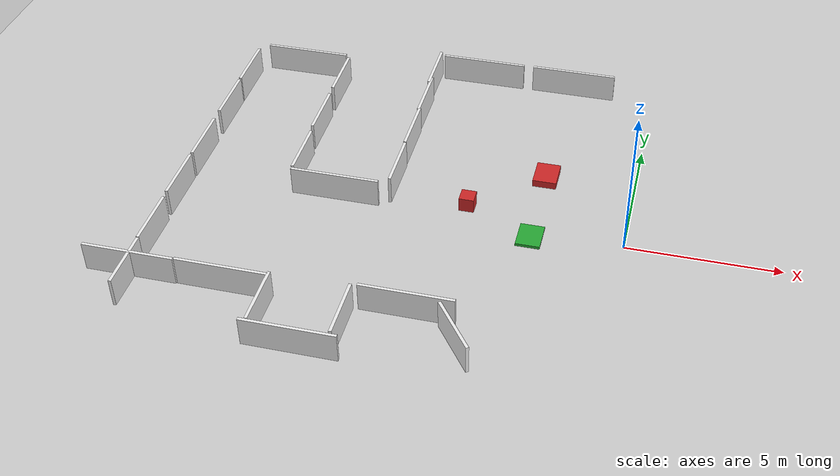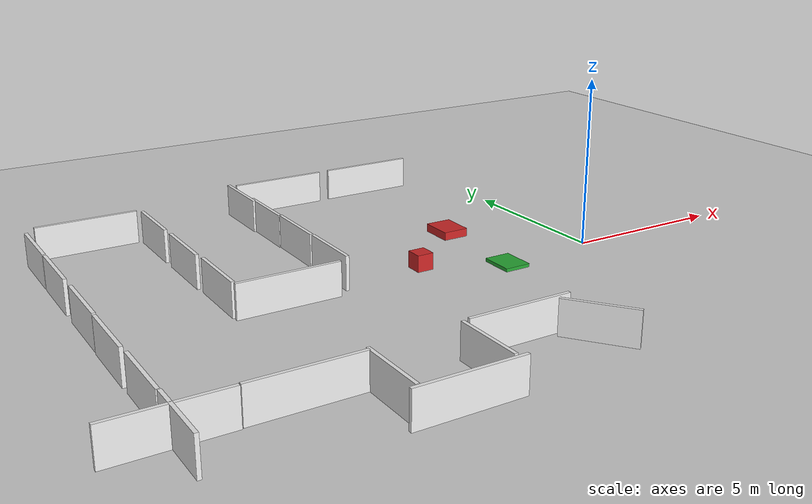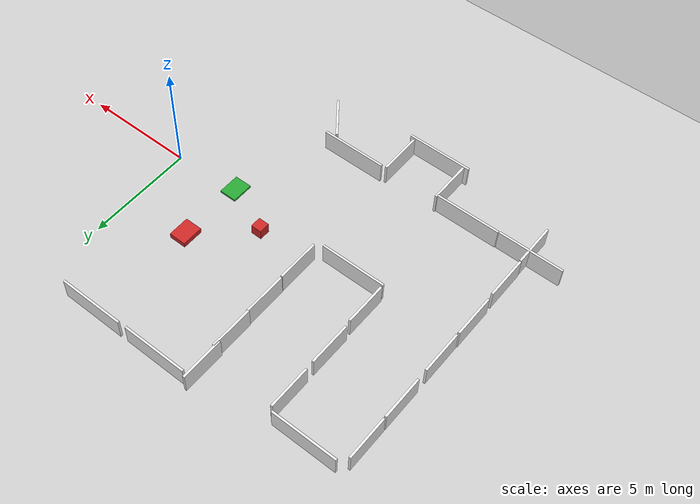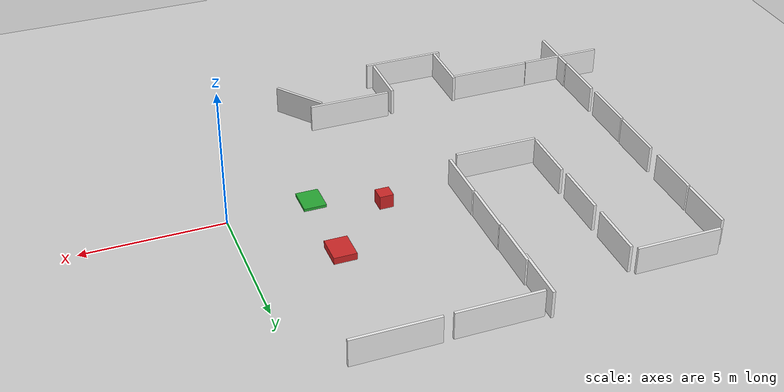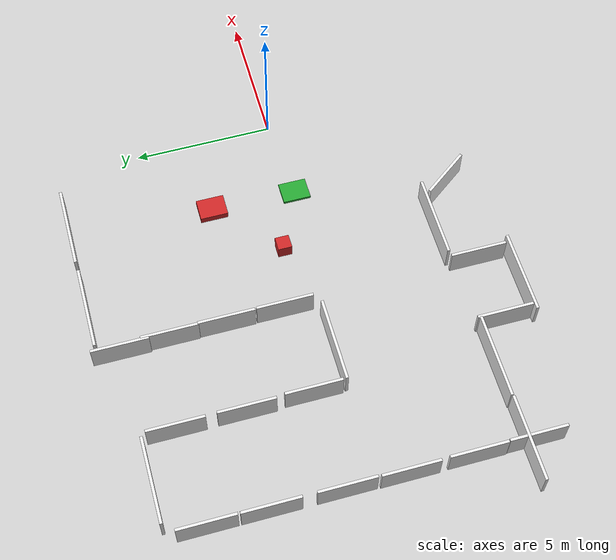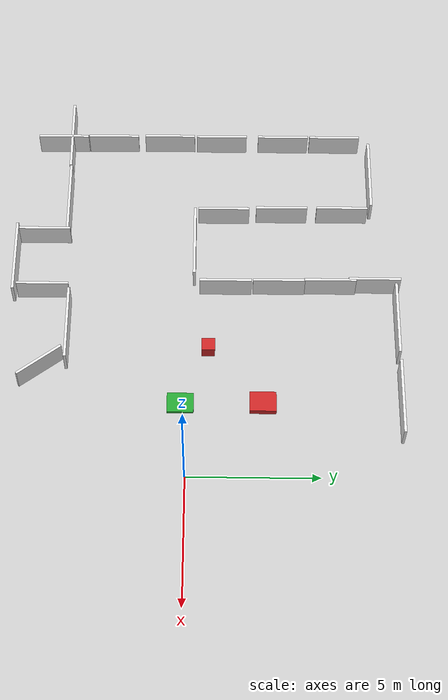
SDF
<sdf version="1.7">
 <world name="two_floor_test">
  <model name="ground_plane">
   <static>1</static>
   <link name="link">
    <collision name="collision">
     <geometry><plane><normal>0 0 1</normal><size>20 20</size></plane></geometry>
     <surface><friction><ode><mu>100</mu><mu2>50</mu2></ode></friction></surface>
    </collision>
    <visual name="visual">
     <cast_shadows>0</cast_shadows>
     <geometry><plane><normal>0 0 1</normal><size>20 20</size></plane></geometry>
     <material>
      <script><uri>file://media/materials/scripts/gazebo.material</uri><name>Gazebo/Grey</name></script>
     </material>
    </visual>
   </link>
  </model>
  <model name="obstacle_box_1">
   <static>1</static>
   <pose>-5.28721 0.823021 0.25 0 -0 0</pose>
   <link name="link">
    <collision name="collision"><geometry><box><size>0.5 0.5 0.5</size></box></geometry></collision>
    <visual name="visual">
     <geometry><box><size>0.5 0.5 0.5</size></box></geometry>
     <material>
      <script><uri>file://media/materials/scripts/gazebo.material</uri><name>Gazebo/Red</name></script>
     </material>
    </visual>
   </link>
  </model>
  <model name="obstacle_small_step">
   <static>1</static>
   <pose>-3.00223 -0.205601 0.05 0 -0 0</pose>
   <link name="link">
    <collision name="collision">
     <geometry><box><size>0.8 1 0.1</size></box></geometry>
     <surface><friction><ode><mu>100</mu><mu2>50</mu2></ode></friction></surface>
    </collision>
    <visual name="visual">
     <geometry><box><size>0.8 1 0.1</size></box></geometry>
     <material>
      <script><uri>file://media/materials/scripts/gazebo.material</uri><name>Gazebo/Green</name></script>
     </material>
    </visual>
   </link>
  </model>
  <model name="obstacle_large_step">
   <static>1</static>
   <pose>-3.00224 2.88248 0.125 0 -0 0</pose>
   <link name="link">
    <collision name="collision">
     <geometry><box><size>0.8 1 0.25</size></box></geometry>
     <surface><friction><ode><mu>100</mu><mu2>50</mu2></ode></friction></surface>
    </collision>
    <visual name="visual">
     <geometry><box><size>0.8 1 0.25</size></box></geometry>
     <material>
      <script><uri>file://media/materials/scripts/gazebo.material</uri><name>Gazebo/Red</name></script>
     </material>
    </visual>
   </link>
  </model>
  <model name="wall_ramp_clone_2">
   <static>1</static>
   <pose>-7.85003 1.46144 0.5 0 -0 0</pose>
   <link name="link">
    <collision name="collision"><geometry><box><size>0.1 2 1</size></box></geometry></collision>
    <visual name="visual">
     <geometry><box><size>0.1 2 1</size></box></geometry>
     <material>
      <script><uri>file://media/materials/scripts/gazebo.material</uri><name>Gazebo/White</name></script>
     </material>
    </visual>
   </link>
  </model>
  <model name="wall_stairs_clone_0">
   <static>1</static>
   <pose>-5.94725 -4.54683 0.5 0 -0 0</pose>
   <link name="link">
    <collision name="collision"><geometry><box><size>3 0.1 1</size></box></geometry></collision>
    <visual name="visual">
     <geometry><box><size>3 0.1 1</size></box></geometry>
     <material>
      <script><uri>file://media/materials/scripts/gazebo.material</uri><name>Gazebo/White</name></script>
     </material>
    </visual>
   </link>
  </model>
  <model name="wall_stairs_clone_2">
   <static>1</static>
   <pose>-2.93126 8.02543 0.5 0 -0 0</pose>
   <link name="link">
    <collision name="collision"><geometry><box><size>3 0.1 1</size></box></geometry></collision>
    <visual name="visual">
     <geometry><box><size>3 0.1 1</size></box></geometry>
     <material>
      <script><uri>file://media/materials/scripts/gazebo.material</uri><name>Gazebo/White</name></script>
     </material>
    </visual>
   </link>
  </model>
  <model name="wall_stairs_clone_3">
   <static>1</static>
   <pose>-6.2784 8.00242 0.5 0 -0 0</pose>
   <link name="link">
    <collision name="collision"><geometry><box><size>3 0.1 1</size></box></geometry></collision>
    <visual name="visual">
     <geometry><box><size>3 0.1 1</size></box></geometry>
     <material>
      <script><uri>file://media/materials/scripts/gazebo.material</uri><name>Gazebo/White</name></script>
     </material>
    </visual>
   </link>
  </model>
  <model name="wall_ramp_clone_2_clone">
   <static>1</static>
   <pose>-4.29434 -5.50248 0.5 0 -0 0.645112</pose>
   <link name="link">
    <collision name="collision"><geometry><box><size>0.1 2 1</size></box></geometry></collision>
    <visual name="visual">
     <geometry><box><size>0.1 2 1</size></box></geometry>
     <material>
      <script><uri>file://media/materials/scripts/gazebo.material</uri><name>Gazebo/White</name></script>
     </material>
    </visual>
   </link>
  </model>
  <model name="wall_ramp_clone_2_clone_1">
   <static>1</static>
   <pose>-7.64634 -5.58073 0.5 0 -0 0</pose>
   <link name="link">
    <collision name="collision"><geometry><box><size>0.1 2 1</size></box></geometry></collision>
    <visual name="visual">
     <geometry><box><size>0.1 2 1</size></box></geometry>
     <material>
      <script><uri>file://media/materials/scripts/gazebo.material</uri><name>Gazebo/White</name></script>
     </material>
    </visual>
   </link>
  </model>
  <model name="wall_ramp_clone_2_clone_2">
   <static>1</static>
   <pose>-10.1757 -5.63925 0.5 0 -0 0</pose>
   <link name="link">
    <collision name="collision"><geometry><box><size>0.1 2 1</size></box></geometry></collision>
    <visual name="visual">
     <geometry><box><size>0.1 2 1</size></box></geometry>
     <material>
      <script><uri>file://media/materials/scripts/gazebo.material</uri><name>Gazebo/White</name></script>
     </material>
    </visual>
   </link>
  </model>
  <model name="wall_ramp_clone_2_clone_3">
   <static>1</static>
   <pose>-7.86965 3.51111 0.5 0 -0 0</pose>
   <link name="link">
    <collision name="collision"><geometry><box><size>0.1 2 1</size></box></geometry></collision>
    <visual name="visual">
     <geometry><box><size>0.1 2 1</size></box></geometry>
     <material>
      <script><uri>file://media/materials/scripts/gazebo.material</uri><name>Gazebo/White</name></script>
     </material>
    </visual>
   </link>
  </model>
  <model name="wall_ramp_clone_2_clone_4">
   <static>1</static>
   <pose>-7.89941 5.47788 0.5 0 -0 0</pose>
   <link name="link">
    <collision name="collision"><geometry><box><size>0.1 2 1</size></box></geometry></collision>
    <visual name="visual">
     <geometry><box><size>0.1 2 1</size></box></geometry>
     <material>
      <script><uri>file://media/materials/scripts/gazebo.material</uri><name>Gazebo/White</name></script>
     </material>
    </visual>
   </link>
  </model>
  <model name="wall_stairs_clone_clone">
   <static>1</static>
   <pose>-8.89798 -6.70854 0.5 0 -0 0</pose>
   <link name="link">
    <collision name="collision"><geometry><box><size>3 0.1 1</size></box></geometry></collision>
    <visual name="visual">
     <geometry><box><size>3 0.1 1</size></box></geometry>
     <material>
      <script><uri>file://media/materials/scripts/gazebo.material</uri><name>Gazebo/White</name></script>
     </material>
    </visual>
   </link>
  </model>
  <model name="wall_stairs_clone_clone_0">
   <static>1</static>
   <pose>-11.6931 -4.75098 0.5 0 -0 0</pose>
   <link name="link">
    <collision name="collision"><geometry><box><size>3 0.1 1</size></box></geometry></collision>
    <visual name="visual">
     <geometry><box><size>3 0.1 1</size></box></geometry>
     <material>
      <script><uri>file://media/materials/scripts/gazebo.material</uri><name>Gazebo/White</name></script>
     </material>
    </visual>
   </link>
  </model>
  <model name="wall_stairs_clone_clone_1">
   <static>1</static>
   <pose>-14.7245 -4.77766 0.5 0 -0 0</pose>
   <link name="link">
    <collision name="collision"><geometry><box><size>3 0.1 1</size></box></geometry></collision>
    <visual name="visual">
     <geometry><box><size>3 0.1 1</size></box></geometry>
     <material>
      <script><uri>file://media/materials/scripts/gazebo.material</uri><name>Gazebo/White</name></script>
     </material>
    </visual>
   </link>
  </model>
  <model name="wall_stairs_clone_clone_2">
   <static>1</static>
   <pose>-9.67691 0.245594 0.5 0 -0 0</pose>
   <link name="link">
    <collision name="collision"><geometry><box><size>3 0.1 1</size></box></geometry></collision>
    <visual name="visual">
     <geometry><box><size>3 0.1 1</size></box></geometry>
     <material>
      <script><uri>file://media/materials/scripts/gazebo.material</uri><name>Gazebo/White</name></script>
     </material>
    </visual>
   </link>
  </model>
  <model name="wall_stairs_clone_clone_3">
   <static>1</static>
   <pose>-12.8865 7.17845 0.5 0 -0 0</pose>
   <link name="link">
    <collision name="collision"><geometry><box><size>3 0.1 1</size></box></geometry></collision>
    <visual name="visual">
     <geometry><box><size>3 0.1 1</size></box></geometry>
     <material>
      <script><uri>file://media/materials/scripts/gazebo.material</uri><name>Gazebo/White</name></script>
     </material>
    </visual>
   </link>
  </model>
  <model name="wall_ramp_clone_2_clone_4_clone">
   <static>1</static>
   <pose>-11.1694 1.37105 0.5 0 -0 0</pose>
   <link name="link">
    <collision name="collision"><geometry><box><size>0.1 2 1</size></box></geometry></collision>
    <visual name="visual">
     <geometry><box><size>0.1 2 1</size></box></geometry>
     <material>
      <script><uri>file://media/materials/scripts/gazebo.material</uri><name>Gazebo/White</name></script>
     </material>
    </visual>
   </link>
  </model>
  <model name="wall_ramp_clone_2_clone_4_clone_0">
   <static>1</static>
   <pose>-11.2244 3.65144 0.5 0 -0 0</pose>
   <link name="link">
    <collision name="collision"><geometry><box><size>0.1 2 1</size></box></geometry></collision>
    <visual name="visual">
     <geometry><box><size>0.1 2 1</size></box></geometry>
     <material>
      <script><uri>file://media/materials/scripts/gazebo.material</uri><name>Gazebo/White</name></script>
     </material>
    </visual>
   </link>
  </model>
  <model name="wall_ramp_clone_2_clone_4_clone_1">
   <static>1</static>
   <pose>-11.2395 6.03016 0.5 0 -0 0</pose>
   <link name="link">
    <collision name="collision"><geometry><box><size>0.1 2 1</size></box></geometry></collision>
    <visual name="visual">
     <geometry><box><size>0.1 2 1</size></box></geometry>
     <material>
      <script><uri>file://media/materials/scripts/gazebo.material</uri><name>Gazebo/White</name></script>
     </material>
    </visual>
   </link>
  </model>
  <model name="wall_ramp_clone_2_clone_4_clone_2">
   <static>1</static>
   <pose>-14.6906 5.82366 0.5 0 -0 0</pose>
   <link name="link">
    <collision name="collision"><geometry><box><size>0.1 2 1</size></box></geometry></collision>
    <visual name="visual">
     <geometry><box><size>0.1 2 1</size></box></geometry>
     <material>
      <script><uri>file://media/materials/scripts/gazebo.material</uri><name>Gazebo/White</name></script>
     </material>
    </visual>
   </link>
  </model>
  <model name="wall_ramp_clone_2_clone_4_clone_3">
   <static>1</static>
   <pose>-14.6916 3.74644 0.5 0 -0 0</pose>
   <link name="link">
    <collision name="collision"><geometry><box><size>0.1 2 1</size></box></geometry></collision>
    <visual name="visual">
     <geometry><box><size>0.1 2 1</size></box></geometry>
     <material>
      <script><uri>file://media/materials/scripts/gazebo.material</uri><name>Gazebo/White</name></script>
     </material>
    </visual>
   </link>
  </model>
  <model name="wall_ramp_clone_2_clone_4_clone_4">
   <static>1</static>
   <pose>-14.687 1.26724 0.5 0 -0 0</pose>
   <link name="link">
    <collision name="collision"><geometry><box><size>0.1 2 1</size></box></geometry></collision>
    <visual name="visual">
     <geometry><box><size>0.1 2 1</size></box></geometry>
     <material>
      <script><uri>file://media/materials/scripts/gazebo.material</uri><name>Gazebo/White</name></script>
     </material>
    </visual>
   </link>
  </model>
  <model name="wall_ramp_clone_2_clone_4_clone_4_clone">
   <static>1</static>
   <pose>-14.7047 -0.825585 0.5 0 -0 0</pose>
   <link name="link">
    <collision name="collision"><geometry><box><size>0.1 2 1</size></box></geometry></collision>
    <visual name="visual">
     <geometry><box><size>0.1 2 1</size></box></geometry>
     <material>
      <script><uri>file://media/materials/scripts/gazebo.material</uri><name>Gazebo/White</name></script>
     </material>
    </visual>
   </link>
  </model>
  <model name="wall_ramp_clone_2_clone_4_clone_4_clone_0">
   <static>1</static>
   <pose>-14.6813 -3.10173 0.5 0 -0 0</pose>
   <link name="link">
    <collision name="collision"><geometry><box><size>0.1 2 1</size></box></geometry></collision>
    <visual name="visual">
     <geometry><box><size>0.1 2 1</size></box></geometry>
     <material>
      <script><uri>file://media/materials/scripts/gazebo.material</uri><name>Gazebo/White</name></script>
     </material>
    </visual>
   </link>
  </model>
  <model name="wall_ramp_clone_2_clone_4_clone_4_clone_1">
   <static>1</static>
   <pose>-14.6594 -5.12697 0.5 0 -0 0</pose>
   <link name="link">
    <collision name="collision"><geometry><box><size>0.1 2 1</size></box></geometry></collision>
    <visual name="visual">
     <geometry><box><size>0.1 2 1</size></box></geometry>
     <material>
      <script><uri>file://media/materials/scripts/gazebo.material</uri><name>Gazebo/White</name></script>
     </material>
    </visual>
   </link>
  </model>
  <model name="wall_ramp_clone_2_clone_4_clone_4_clone_2">
   <static>1</static>
   <pose>-7.96095 7.18911 0.5 0 -0 0</pose>
   <link name="link">
    <collision name="collision"><geometry><box><size>0.1 2 1</size></box></geometry></collision>
    <visual name="visual">
     <geometry><box><size>0.1 2 1</size></box></geometry>
     <material>
      <script><uri>file://media/materials/scripts/gazebo.material</uri><name>Gazebo/White</name></script>
     </material>
    </visual>
   </link>
  </model>
 </world>
</sdf>
